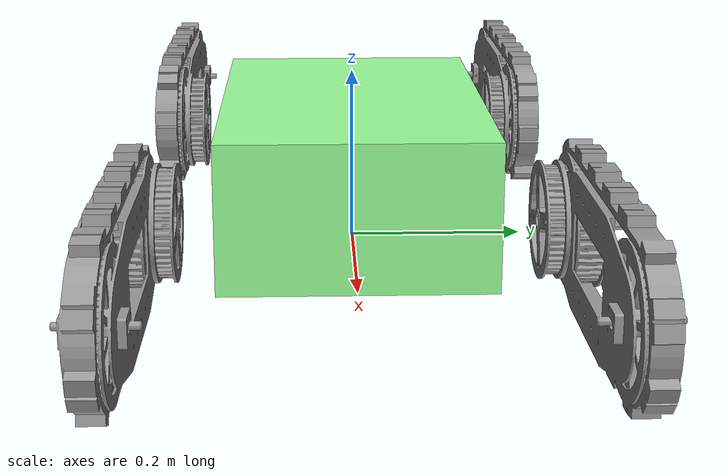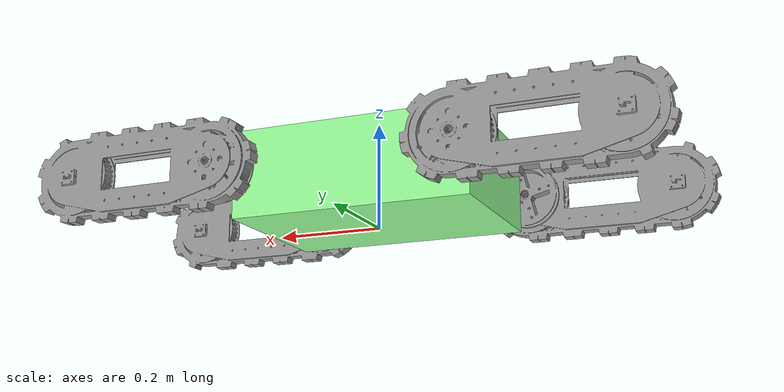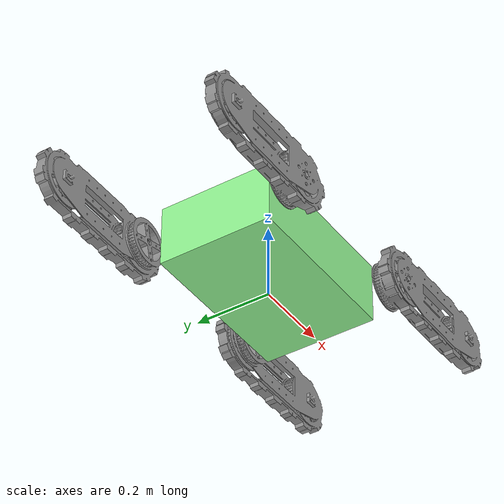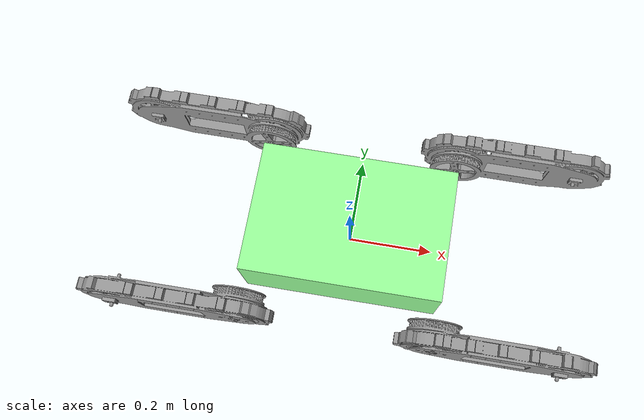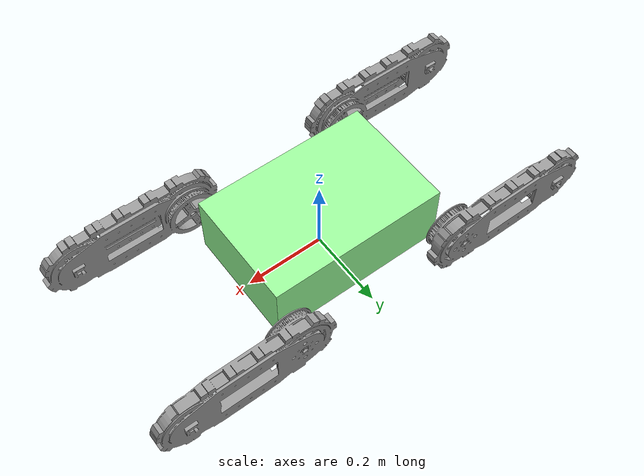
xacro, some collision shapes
<?xml version="1.0" encoding="UTF-8"?>
<robot name="crawler_body" xmlns:xacro="http://ros.org/wiki/xacro">

  <xacro:include filename="$(find nitro_discription)/xacro/body.xacro"/>
  <xacro:include filename="$(find nitro_discription)/xacro/flipper.xacro"/>
  <xacro:macro name="make_box_inertia" params="mass size_x size_y size_z">

    <inertial>
        <mass value="${mass}" />
        <inertia ixx="${mass * (size_y * size_y + size_z * size_z) / 12}" ixy="0" ixz="0" iyy="${mass * (size_z * size_z + size_x * size_x) / 12}" iyz="0" izz="${mass * (size_x * size_x + size_y * size_y) / 12}" />
    </inertial>
  </xacro:macro>

  <xacro:property name="WHITE" value="1 1 1 1" />

  <link name="base_footprint"/>
  <joint name="plane2base" type="fixed">
    <parent link="base_footprint"/>
    <child link="base_link"/>
    <origin xyz="0 0 0.088" rpy="0 0 0"/>
  </joint>

  <link name="base_link"/>

  <xacro:main_body_newbelt parent="main_body"/>

  <xacro:flipper    LR="left"  FR="front" parent="main_body"/>
  <xacro:flipper   LR="left"  FR="rear"  parent="main_body" />
  <xacro:flipper   LR="right" FR="front" parent="main_body"/>
  <xacro:flipper   LR="right" FR="rear"  parent="main_body" />

    <gazebo>
      <plugin name="gazebo_ros_control" filename="libgazebo_ros_control.so">
          <robotSimType>gazebo_ros_control/DefaultRobotHWSim</robotSimType>
          <legacyModeNS>false</legacyModeNS>
      </plugin>

  </gazebo>

</robot>

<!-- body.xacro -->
<robot xmlns:xacro="http://ros.org/wiki/xacro">
  <material name="body_colors">
    <color rgba="0.6 1.0 0.6 1.0"/>
  </material>

  <xacro:include filename="$(find nitro_description)/xacro/macros/common.xacro"/>

  <xacro:macro name="main_body_newbelt" params="parent">

    <joint name="2main_body" type="fixed">
      <parent link="base_link"/>
      <child  link="${parent}"/>
      <origin xyz="0 0 0" rpy="0 0 0"/>
    </joint>

    <joint name="mainbelt_left_joint" type="revolute">
      <parent link="${parent}"/>
      <child  link="mainbelt_left"/>
      <origin xyz="0 0.122 0" rpy="0 0 0"/>
      <limit effort="1000" velocity="1.0" upper="100" lower="-100"/>
      <axis xyz="0 1 0"/>
    </joint>

    <joint name="mainbelt_right_joint" type="revolute">
      <parent link="${parent}"/>
      <child  link="mainbelt_right"/>
      <origin xyz="0 -0.122 0" rpy="0 0 0"/>
      <limit effort="1000" velocity="1.0" upper="100" lower="-100" />
      <axis xyz="0 1 0"/>
    </joint>

    <link name="${parent}">
      <visual>
        <origin xyz="0 0 0" rpy="${pi} 0 0"/>
        <geometry>
          <mesh filename="package://nitro_description/meshes/body/main_crawler.stl" scale="0.001 0.001 0.001"/>
        </geometry>
        <material name="body_colors"/>
      </visual>

      <inertial>
      <mass value="33"/>
      <inertia ixx="0.42295" ixy="0.0" ixz="0.0" iyy="0.733975" iyz="0.0" izz="1.063975"/>
    </inertial>
    <collision>
      <origin xyz="0 0 0" rpy="0 0 0"/>
      <geometry>
        <box size="0.45 0.3 0.164"/>
      </geometry>
    </collision>
    </link>

    <link name="mainbelt_left">

      <collision>
        <origin xyz="0 0 0" rpy="0 0 0" />
        <geometry>
          <box size="0.45 0.1 0.164" />
        </geometry>
      </collision>

      <collision>
        <origin xyz="0.225 0 0" rpy="${pi/2} 0 0"/>
        <geometry>
          <cylinder radius="0.082" length="0.1"/>
        </geometry>
      </collision>

      <collision>
        <origin xyz="-0.225 0 0" rpy="${pi/2} 0 0"/>
        <geometry>
          <cylinder radius="0.082" length="0.1"/>
        </geometry>
      </collision>

    </link>
    <link name="mainbelt_right">

      <collision>
        <origin xyz="0 0 0" rpy="0 0 0" />
        <geometry>
          <box size="0.45 0.1 0.164" />
        </geometry>
      </collision>

      <collision>
        <origin xyz="0.225 0 0" rpy="${pi/2} 0 0"/>
        <geometry>
          <cylinder radius="0.082" length="0.1"/>
        </geometry>
      </collision>

      <collision>
        <origin xyz="-0.225 0 0" rpy="${pi/2} 0 0"/>
        <geometry>
          <cylinder radius="0.082" length="0.1"/>
        </geometry>
      </collision>

    </link>

    <xacro:joint_velocity_trans_v0 name="mainbelt_left_joint"/>

    <xacro:joint_velocity_trans_v0 name="mainbelt_right_joint"/>
    <gazebo reference="mainbelt_left_joint">
      <material>Gazebo/Red</material>
    </gazebo>
    <gazebo reference="mainbelt_right_joint">
      <material>Gazebo/Red</material>
    </gazebo>

  </xacro:macro>

</robot>

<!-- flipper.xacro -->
<robot xmlns:xacro="http://ros.org/wiki/xacro">
  <material name="flipper_colors">
    <color rgba="0.6 0.6 0.6 1"/>
  </material>
  <material name="flipper_belt_colors">
    <color rgba="0.6 0.6 0.6 1"/>
  </material>

 <!--flipper depiction-->
 <xacro:macro name="flipper" params="LR FR parent">
    <!--LR: left or right, FR: front or rear-->
    <xacro:if value="${FR=='front'}">
      <xacro:property name="fr" value="1"/>
      <xacro:property name="fr_yaw" value="0.001"/>
      <xacro:property name="fr_ax" value="1"/>

    </xacro:if>
    <xacro:if value="${FR=='rear'}">
      <xacro:property name="fr" value="0"/>
      <xacro:property name="fr_yaw" value="-0.001"/>
      <xacro:property name="fr_ax" value="-1"/>
    </xacro:if>
    <xacro:if value="${LR=='left'}">
      <xacro:property name="lr" value="0.001"/>
      <xacro:property name="lr_ax" value="1"/>
    </xacro:if>
    <xacro:if value="${LR=='right'}">
      <xacro:property name="lr" value="-0.001"/>
      <xacro:property name="lr_ax" value="-1"/>
    </xacro:if>
    <xacro:if value="${LR=='left'}">
      <xacro:property name="fli_row" value="1"/>
    </xacro:if>
    <xacro:if value="${LR=='right'}">
      <xacro:property name="fli_row" value="0"/>
    </xacro:if>

    <xacro:property  name="width_flip" value="0.05"/>
    <xacro:property  name="long_flip" value="0.15"/>
    <xacro:property  name="radius_flip" value="0.08"/>

     <!--pole-->
    <joint name="joint_${LR}_${FR}" type="revolute">
      <parent link="${parent}"/>
      <child  link="${LR}_${FR}"/>
      <axis xyz="0 ${fr_ax*lr_ax} 0"/>
      <limit effort="10000" lower="${-pi}" upper="${pi}" velocity="1"/>
      <origin xyz="${225*fr_yaw} ${184*lr} ${0*0.001}" rpy="${pi*fli_row} ${pi*(fr-1)} ${pi}"/>
    </joint>

     <!--belt-->
    <link name="${LR}_${FR}">
      <material>
        <color rgba="${WHITE}" />
      </material>
      <visual>
        <geometry>
          <mesh filename="package://nitro_description/meshes/body/flipper2024_newbelt.stl" scale="0.001 0.001 0.001"/>
        </geometry>
        <material name="flipper_colors"/>
      </visual>
      <collision>
        <origin xyz="-0.145 0.048 0" rpy="0 0 0" />
        <geometry>
          <box size="0.29 0.025 0.164" />
        </geometry>
      </collision>

      <collision>
        <origin xyz="0 0.048 0" rpy="${pi/2} 0 0"/>
        <geometry>
          <cylinder radius="0.082" length="0.025"/>
        </geometry>
      </collision>

      <collision>
        <origin xyz="-0.29 0.048 0" rpy="${pi/2} 0 0"/>
        <geometry>
          <cylinder radius="0.082" length="0.025"/>
        </geometry>
      </collision>

      <inertial>
        <origin xyz="-0.14 0.048 0" rpy="0 0 0"/>
      <mass value="1.5"/>
      <inertia ixx="0.0030125" ixy="0.0" ixz="0.0" iyy="0.01406" iyz="0.0" izz="0.01145"/>
    </inertial>
    </link>

    <transmission name="trans_${LR}_${FR}">
      <type>transmission_interface/SimpleTransmission</type>
      <joint name="joint_${LR}_${FR}">
          <hardwareInterface>hardware_interface/PositionJointInterface</hardwareInterface>
      </joint>
      <actuator name="autuator_${LR}_${FR}">
          <hardwareInterface>hardware_interface/PositionJointInterface</hardwareInterface>
          <mechanicalReduction>1</mechanicalReduction>
      </actuator>
  </transmission>

  </xacro:macro>
</robot>
